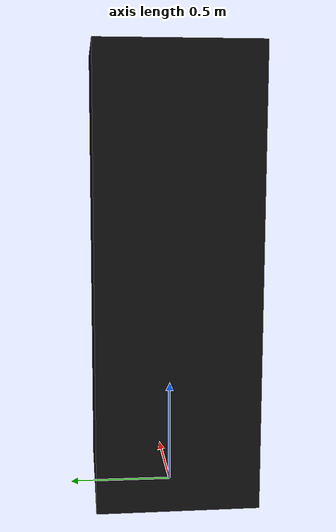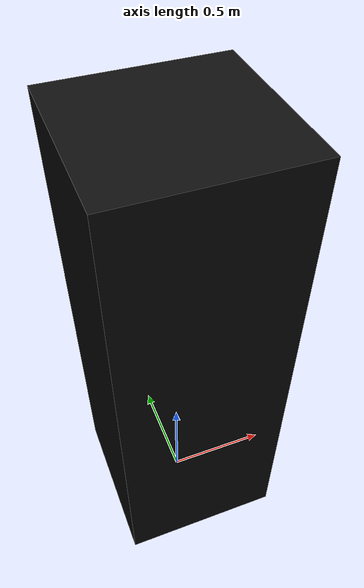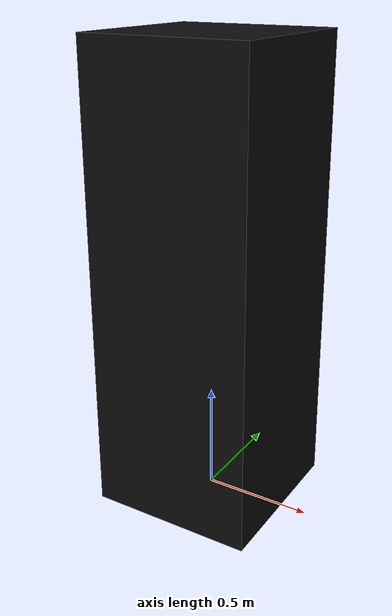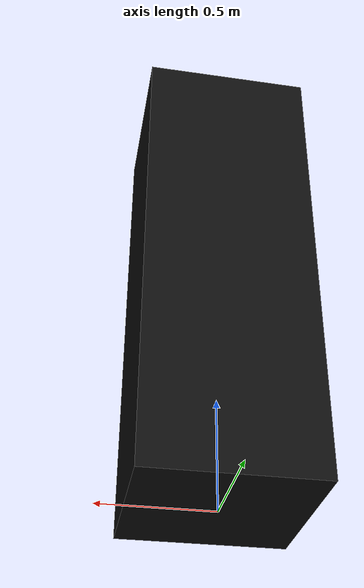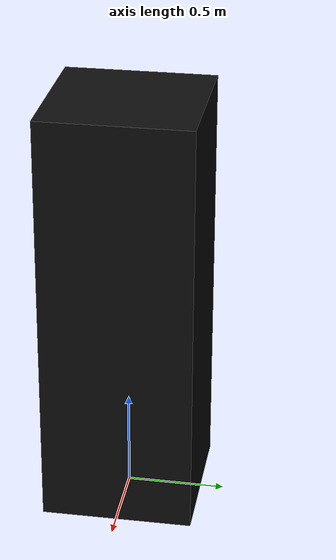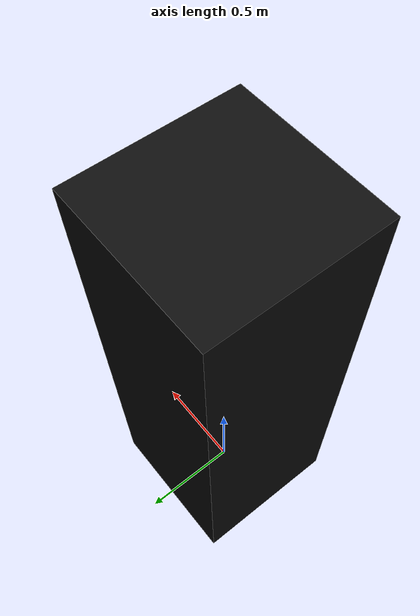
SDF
<?xml version="1.0" ?>
<sdf version="1.7">
  <model name="everblock_grey">
    <static>true</static>
    <link name="block">
      <pose>0 0 1.0668 0 0 0</pose>
      <collision name="collision">
        <geometry>
          <box>
            <size>0.762 0.762 2.1336</size>
          </box>
        </geometry>
      </collision>
      <visual name="visual">
        <geometry>
          <mesh>
            <uri>model://everblock_grey/meshes/everblock_grey.dae</uri>
          </mesh>
	  	</geometry>
        <material>
          <diffuse>0.05 0.05 0.05 1</diffuse>
          <specular>0.8 0.8 0.8 1</specular>
          <pbr>
            <metal>
              <roughness_map>model://everblock_grey/meshes/textures/everblock_grey_roughness.png</roughness_map>
              <ambient_occlusion_map>model://everblock_grey/meshes/textures/everblock_grey_ao.png</ambient_occlusion_map>
              <normal_map>model://everblock_grey/meshes/textures/everblock_grey_normal.png</normal_map>
            </metal>
          </pbr>
        </material>
      </visual>
    </link>
  </model>
</sdf>
